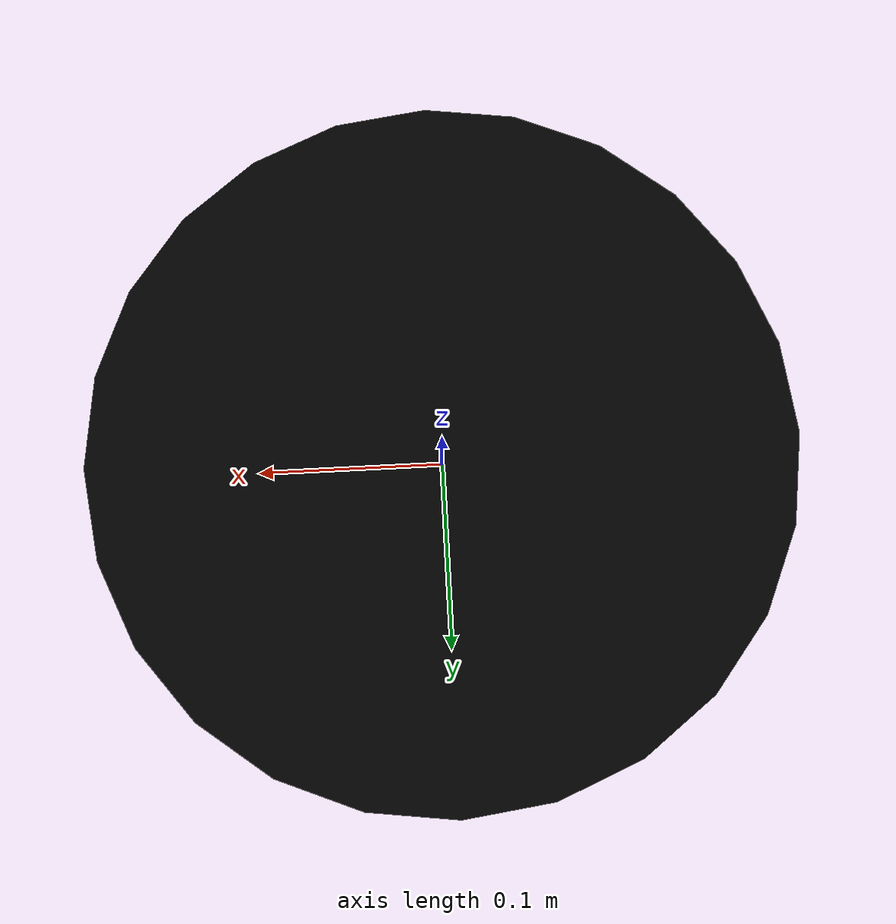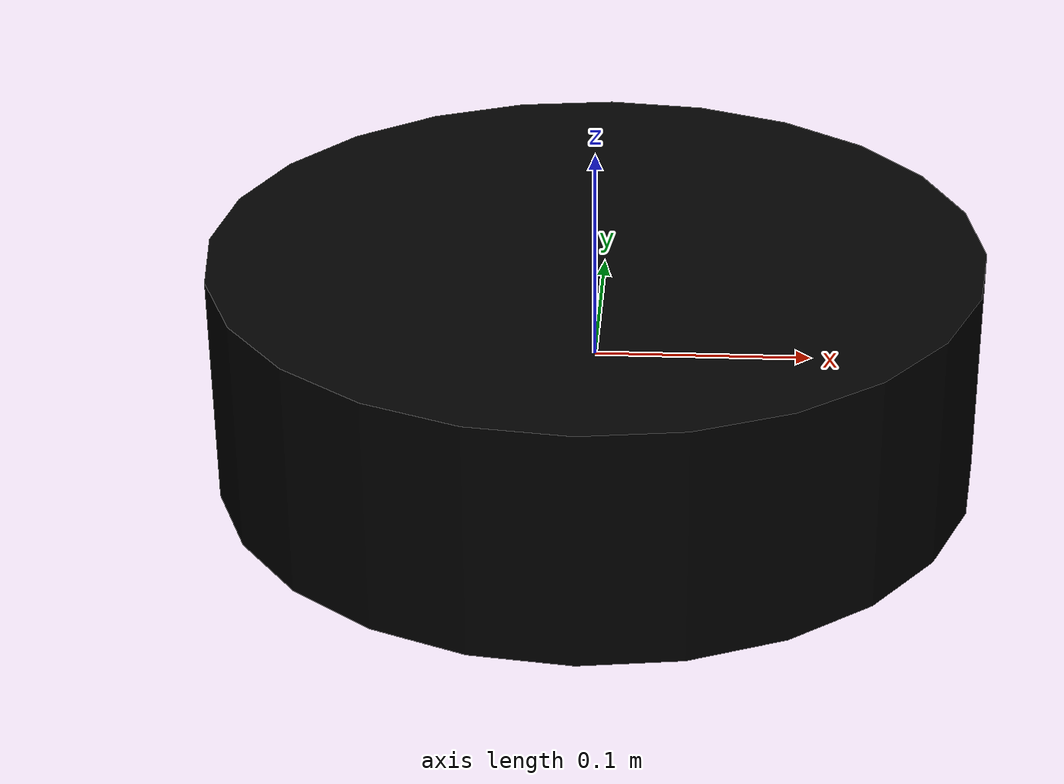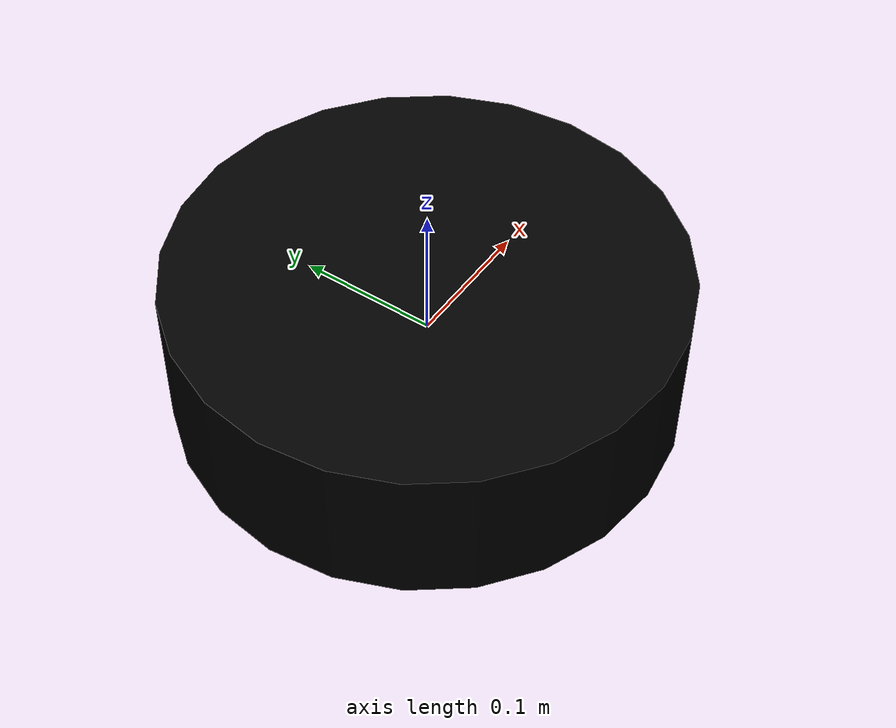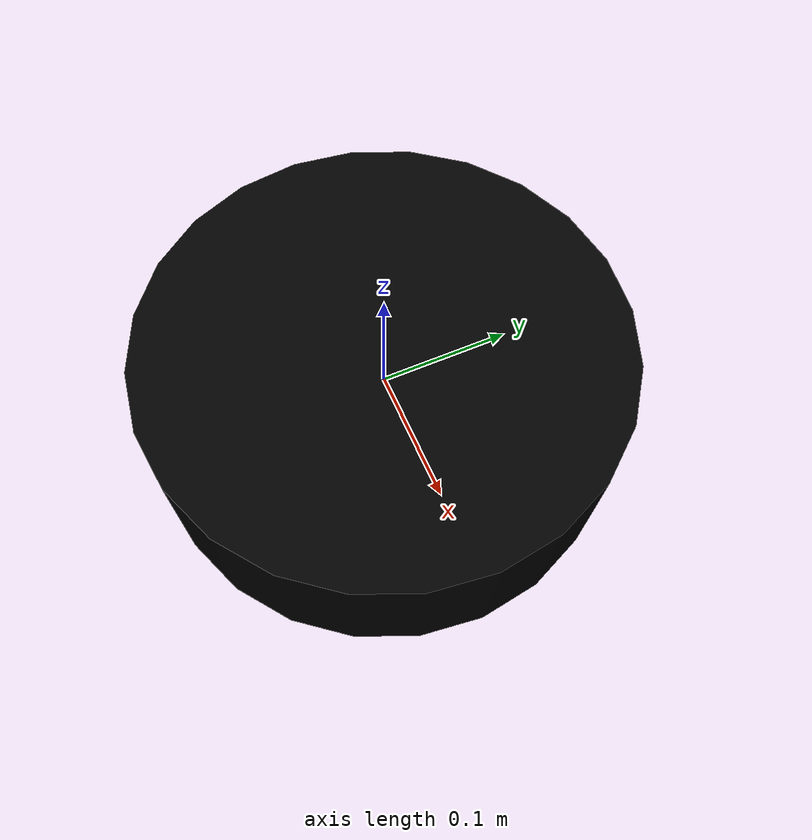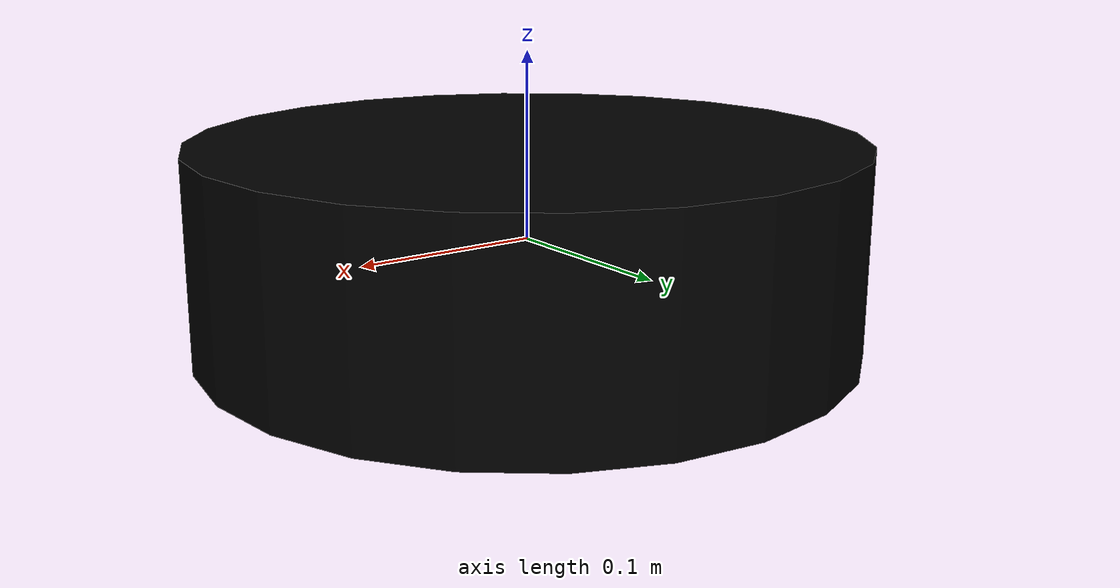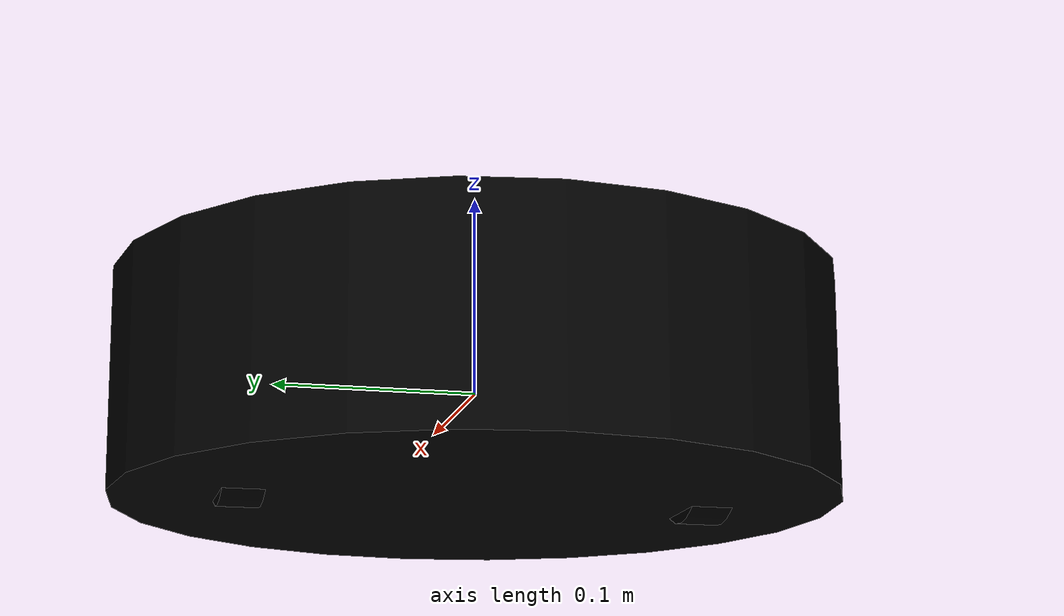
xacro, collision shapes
<?xml version="1.0"?>
<robot xmlns:xacro="http://www.ros.org/wiki/xacro" >

    <xacro:include filename="inertial_macros.xacro"/>

    <material name="white">
        <color rgba="1 1 1 1" />
    </material>

    <material name="orange">
        <color rgba="1 0.3 0.1 1"/>
    </material>

    <material name="blue">
        <color rgba="0.2 0.2 1 1"/>
    </material>

    <material name="black">
        <color rgba="0 0 0 1"/>
    </material>

    <!-- BASE LINK -->

    <link name="base_link">

    </link>

    <!-- CHASSIS LINK -->

    <joint name="chassis_joint" type="fixed">
        <parent link="base_link"/>
        <child link="chassis"/>
        <origin xyz="0 0 0" rpy="0 0 0"/>
    </joint>

    <link name="chassis">
      <visual>
        <geometry>
          <!-- new mesh -->
          <!--mesh filename="file://$(find articubot_one)/meshes/microwave.stl" scale="0.01 0.01 0.01"/-->
          <mesh filename="file://$(find Kobuki_sim)/meshes/kobuki_base.stl" scale="0.01 0.01 0.01"/>
          <!--mesh filename="package://install/package_name/share/package_name/meshes/kobuki_base.stl" scale="0.01 0.01 0.01"/-->
          <!--cylinder radius="0.015" length="0.0206"/-->
        </geometry>
        <material name="black"/>
        <origin xyz="0.0 0 -0.055" rpy="${pi/2} 0 ${pi/2}"/>
      </visual>
      <collision>
        <geometry>
          <cylinder length="0.10938" radius="0.178"/>
        </geometry>
        <origin xyz="0.0 0 0.0" rpy="0 0 0"/>
      </collision>
      <inertial>
        <!-- COM experimentally determined -->
        <origin xyz="0.01 0 0"/>
        <mass value="2.4"/> <!-- 2.4/2.6 kg for small/big battery pack -->
        <inertia ixx="0.019995" ixy="0.0" ixz="0.0"
                 iyy="0.019995" iyz="0.0"
                 izz="0.03675" />
      </inertial>
    </link>

    <gazebo reference="chassis">
        <material>Gazebo/White</material>
    </gazebo>

    <!-- LEFT WHEEL LINK -->

    <joint name="left_wheel_joint" type="continuous">
        <parent link="base_link"/>
        <child link="left_wheel"/>
        <origin xyz="0 0.115 -0.025" rpy="-${pi/2} 0 0" />
        <axis xyz="1 0 0"/>
    </joint>

    <link name="left_wheel">
        <visual>
            <geometry>
                <!--mesh filename="file:///home/michela/dev_ws/src/articubot_one/meshes/wheel.dae" scale="0.01 0.01 0.01"/-->
                <cylinder radius="0.035" length="0.0206"/>
            </geometry>
            <material name="black"/>
        </visual>
        <collision>
            <geometry>
                <cylinder radius="0.035" length="0.0206"/>
            </geometry>
        </collision>
        <xacro:inertial_cylinder mass="0.1" length="0.0352" radius="0.0206">
            <origin xyz="0 0 0" rpy="0 0 0"/>
        </xacro:inertial_cylinder>
    </link>

    <gazebo reference="left_wheel">
        <material>Gazebo/Blue</material>
    </gazebo>

    <!-- RIGHT WHEEL LINK -->

    <joint name="right_wheel_joint" type="continuous">
        <parent link="base_link"/>
        <child link="right_wheel"/>
        <origin xyz="0 -0.115 -0.025" rpy="${pi/2} 0 0" />
        <axis xyz="0 0 -1"/>
    </joint>

    <link name="right_wheel">
        <visual>
            <geometry>
                <!--mesh filename="file:///home/michela/dev_ws/src/articubot_one/meshes/wheel.dae" scale="0.01 0.01 0.01"/-->
                <cylinder radius="0.035" length="0.0206"/>
            </geometry>
            <material name="black"/>
        </visual>
        <collision>
            <geometry>
                <cylinder radius="0.035" length="0.0206"/>
            </geometry>
        </collision>
        <xacro:inertial_cylinder mass="0.1" length="0.0206" radius="0.0352">
            <origin xyz="0 0 0" rpy="0 0 0"/>
        </xacro:inertial_cylinder>
    </link>

    <gazebo reference="right_wheel">
        <material>Gazebo/Blue</material>
    </gazebo>

    <!-- CASTER WHEEL LINK -->

    <gazebo reference="caster_wheel">
        <material>Gazebo/Black</material>
        <mu1 value="0.001"/>
        <mu2 value="0.001"/>
    </gazebo>

</robot>
